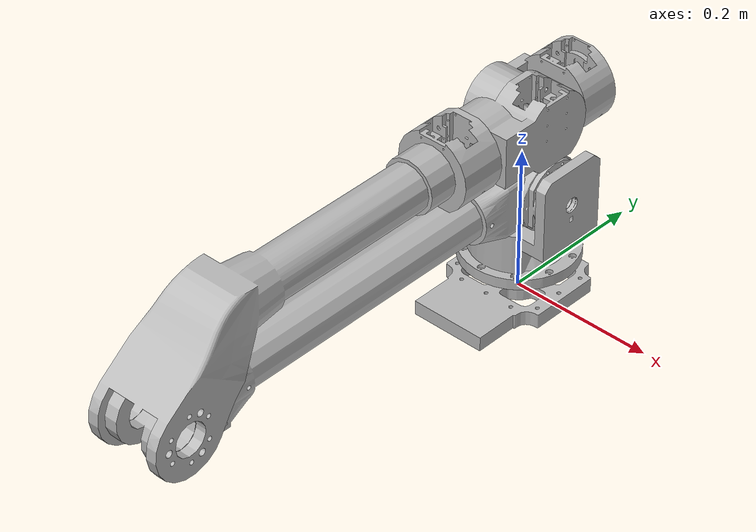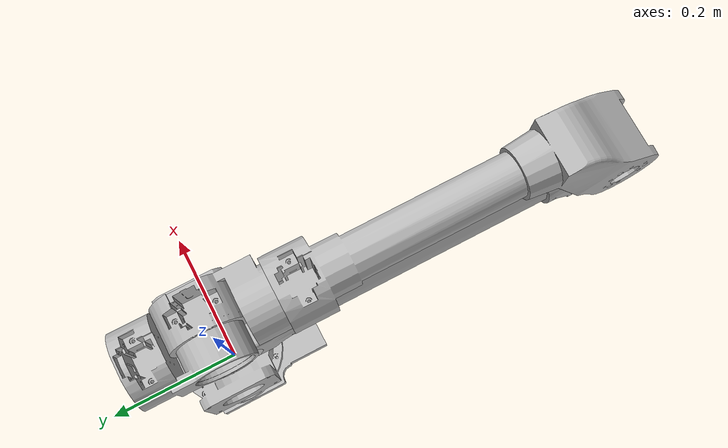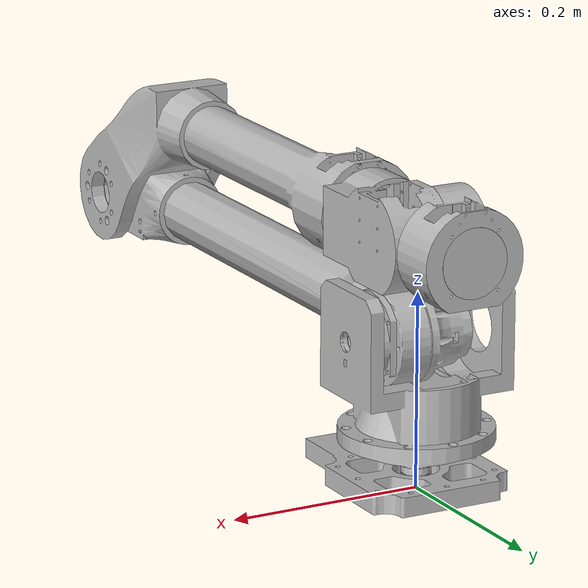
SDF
<sdf version='1.6'>
  <model name='solid_arm_3'>
    <link name='base_link'>
      <pose frame=''>0 0 0 0 -0 0</pose>
      <inertial>
        <pose frame=''>0 -0.034736 0.009937 0 -0 0</pose>
        <mass>300</mass>
        <inertia>
          <ixx>0.00130137</ixx>
          <ixy>-3.2503e-14</ixy>
          <ixz>-1.25315e-16</ixz>
          <iyy>0.000611256</iyy>
          <iyz>7.97483e-07</iyz>
          <izz>0.00188833</izz>
        </inertia>
      </inertial>
      <collision name='base_link_collision'>
        <pose frame=''>0 0 0 0 -0 0</pose>
        <geometry>
          <mesh>
            <scale>1 1 1</scale>
            <uri>model://solid_arm_3/meshes/base_link.STL</uri>
          </mesh>
        </geometry>
      </collision>
      <visual name='base_link_visual'>
        <pose frame=''>0 0 0 0 -0 0</pose>
        <geometry>
          <mesh>
            <scale>1 1 1</scale>
            <uri>model://solid_arm_3/meshes/base_link.STL</uri>
          </mesh>
        </geometry>
      </visual>
    </link>
    <link name='link_1'>
      <pose frame=''>0 0 -0.000272 1.5708 -0 1.5708</pose>
      <inertial>
        <pose frame=''>-0 0.093575 0.003489 0 -0 0</pose>
        <mass>0.8</mass>
        <inertia>
          <ixx>0.00445492</ixx>
          <ixy>5.79947e-09</ixy>
          <ixz>1.56221e-09</ixz>
          <iyy>0.00348291</iyy>
          <iyz>-0.000197414</iyz>
          <izz>0.00329382</izz>
        </inertia>
      </inertial>
      <collision name='link_1_collision'>
        <pose frame=''>0 0 0 0 -0 0</pose>
        <geometry>
          <mesh>
            <scale>1 1 1</scale>
            <uri>model://solid_arm_3/meshes/link_1.STL</uri>
          </mesh>
        </geometry>
      </collision>
      <visual name='link_1_visual'>
        <pose frame=''>0 0 0 0 -0 0</pose>
        <geometry>
          <mesh>
            <scale>1 1 1</scale>
            <uri>model://solid_arm_3/meshes/link_1.STL</uri>
          </mesh>
        </geometry>
      </visual>
    </link>
    <joint name='joint_1' type='revolute'>
      <child>link_1</child>
      <parent>base_link</parent>
      <axis>
        <xyz>-0 0 -1</xyz>
        <limit>
          <lower>0</lower>
          <upper>0</upper>
          <effort>0</effort>
          <velocity>0</velocity>
        </limit>
        <dynamics>
          <spring_reference>0</spring_reference>
          <spring_stiffness>0</spring_stiffness>
        </dynamics>
        <use_parent_model_frame>1</use_parent_model_frame>
      </axis>
    </joint>
    <link name='link_2'>
      <pose frame=''>0 0 0.160693 3.14159 -0 -1.5708</pose>
      <inertial>
        <pose frame=''>0.215408 -0.005552 -0.000358 0 -0 0</pose>
        <mass>1.2</mass>
        <inertia>
          <ixx>0.00164764</ixx>
          <ixy>-0.00156682</ixy>
          <ixz>-1.59251e-05</ixz>
          <iyy>0.0812874</iyy>
          <iyz>-1.52329e-05</iyz>
          <izz>0.0814959</izz>
        </inertia>
      </inertial>
      <collision name='link_2_collision'>
        <pose frame=''>0 0 0 0 -0 0</pose>
        <geometry>
          <mesh>
            <scale>1 1 1</scale>
            <uri>model://solid_arm_3/meshes/link_2.STL</uri>
          </mesh>
        </geometry>
      </collision>
      <visual name='link_2_visual'>
        <pose frame=''>0 0 0 0 -0 0</pose>
        <geometry>
          <mesh>
            <scale>1 1 1</scale>
            <uri>model://solid_arm_3/meshes/link_2.STL</uri>
          </mesh>
        </geometry>
      </visual>
    </link>
    <joint name='joint_2' type='revolute'>
      <child>link_2</child>
      <parent>link_1</parent>
      <axis>
        <xyz>1 0 -0</xyz>
        <limit>
          <lower>0</lower>
          <upper>0</upper>
          <effort>0</effort>
          <velocity>0</velocity>
        </limit>
        <dynamics>
          <spring_reference>0</spring_reference>
          <spring_stiffness>0</spring_stiffness>
        </dynamics>
        <use_parent_model_frame>1</use_parent_model_frame>
      </axis>
    </joint>
    <link name='link_3'>
      <pose frame=''>0 -0.604997 0.162742 -0 0 1.5708</pose>
      <inertial>
        <pose frame=''>0.19005 0.000208 0.073463 0 -0 0</pose>
        <mass>0.7</mass>
        <inertia>
          <ixx>0.00415627</ixx>
          <ixy>2.31977e-06</ixy>
          <ixz>-0.00498939</ixz>
          <iyy>0.0637242</iyy>
          <iyz>-1.4468e-07</iyz>
          <izz>0.0628452</izz>
        </inertia>
      </inertial>
      <collision name='link_3_collision'>
        <pose frame=''>0 0 0 0 -0 0</pose>
        <geometry>
          <mesh>
            <scale>1 1 1</scale>
            <uri>model://solid_arm_3/meshes/link_3.STL</uri>
          </mesh>
        </geometry>
      </collision>
      <visual name='link_3_visual'>
        <pose frame=''>0 0 0 0 -0 0</pose>
        <geometry>
          <mesh>
            <scale>1 1 1</scale>
            <uri>model://solid_arm_3/meshes/link_3.STL</uri>
          </mesh>
        </geometry>
      </visual>
    </link>
    <joint name='joint_3' type='revolute'>
      <child>link_3</child>
      <parent>link_2</parent>
      <axis>
        <xyz>-1 -0 -0</xyz>
        <limit>
          <lower>0</lower>
          <upper>0</upper>
          <effort>0</effort>
          <velocity>0</velocity>
        </limit>
        <dynamics>
          <spring_reference>0</spring_reference>
          <spring_stiffness>0</spring_stiffness>
        </dynamics>
        <use_parent_model_frame>1</use_parent_model_frame>
      </axis>
    </joint>
    <link name='link_4'>
      <pose frame=''>0 -0.098 0.257742 -0 -0 0</pose>
      <inertial>
        <pose frame=''>0.019507 0.079919 -0.005563 0 -0 0</pose>
        <mass>0.4</mass>
        <inertia>
          <ixx>0.00115088</ixx>
          <ixy>-3.72011e-05</ixy>
          <ixz>1.33604e-05</ixz>
          <iyy>0.000610658</iyy>
          <iyz>3.16981e-05</iyz>
          <izz>0.00112721</izz>
        </inertia>
      </inertial>
      <collision name='link_4_collision'>
        <pose frame=''>0 0 0 0 -0 0</pose>
        <geometry>
          <mesh>
            <scale>1 1 1</scale>
            <uri>model://solid_arm_3/meshes/link_4.STL</uri>
          </mesh>
        </geometry>
      </collision>
      <visual name='link_4_visual'>
        <pose frame=''>0 0 0 0 -0 0</pose>
        <geometry>
          <mesh>
            <scale>1 1 1</scale>
            <uri>model://solid_arm_3/meshes/link_4.STL</uri>
          </mesh>
        </geometry>
      </visual>
    </link>
    <joint name='joint_4' type='revolute'>
      <child>link_4</child>
      <parent>link_3</parent>
      <axis>
        <xyz>-0 1 -0</xyz>
        <limit>
          <lower>0</lower>
          <upper>0</upper>
          <effort>0</effort>
          <velocity>0</velocity>
        </limit>
        <dynamics>
          <spring_reference>0</spring_reference>
          <spring_stiffness>0</spring_stiffness>
        </dynamics>
        <use_parent_model_frame>1</use_parent_model_frame>
      </axis>
    </joint>
    <link name='link_5'>
      <pose frame=''>0 -0.002093 0.257742 -0 0 1.5708</pose>
      <inertial>
        <pose frame=''>0.064868 0.007142 -0.006547 0 -0 0</pose>
        <mass>0.3</mass>
        <inertia>
          <ixx>0.00066232</ixx>
          <ixy>0.000164061</ixy>
          <ixz>3.4013e-05</ixz>
          <iyy>0.000828482</iyy>
          <iyz>-1.47763e-05</iyz>
          <izz>0.000974256</izz>
        </inertia>
      </inertial>
      <collision name='link_5_collision'>
        <pose frame=''>0 0 0 0 -0 0</pose>
        <geometry>
          <mesh>
            <scale>1 1 1</scale>
            <uri>model://solid_arm_3/meshes/link_5.STL</uri>
          </mesh>
        </geometry>
      </collision>
      <visual name='link_5_visual'>
        <pose frame=''>0 0 0 0 -0 0</pose>
        <geometry>
          <mesh>
            <scale>1 1 1</scale>
            <uri>model://solid_arm_3/meshes/link_5.STL</uri>
          </mesh>
        </geometry>
      </visual>
    </link>
    <joint name='joint_5' type='revolute'>
      <child>link_5</child>
      <parent>link_4</parent>
      <axis>
        <xyz>1 0 0</xyz>
        <limit>
          <lower>0</lower>
          <upper>0</upper>
          <effort>0</effort>
          <velocity>0</velocity>
        </limit>
        <dynamics>
          <spring_reference>0</spring_reference>
          <spring_stiffness>0</spring_stiffness>
        </dynamics>
        <use_parent_model_frame>1</use_parent_model_frame>
      </axis>
    </joint>
    <link name='link_6'>
      <pose frame=''>0 0.106717 0.255728 -1.57079 -1.57079 -1.5708</pose>
      <inertial>
        <pose frame=''>-0.000217 0.004931 -7e-06 0 -0 0</pose>
        <mass>0.2</mass>
        <inertia>
          <ixx>1.20905e-05</ixx>
          <ixy>3.34247e-08</ixy>
          <ixz>-9.39864e-21</ixz>
          <iyy>2.34023e-05</iyy>
          <iyz>-5.34321e-22</iyz>
          <izz>1.19313e-05</izz>
        </inertia>
      </inertial>
      <collision name='link_6_collision'>
        <pose frame=''>0 0 0 0 -0 0</pose>
        <geometry>
          <mesh>
            <scale>1 1 1</scale>
            <uri>model://solid_arm_3/meshes/link_6.STL</uri>
          </mesh>
        </geometry>
      </collision>
      <visual name='link_6_visual'>
        <pose frame=''>0 0 0 0 -0 0</pose>
        <geometry>
          <mesh>
            <scale>1 1 1</scale>
            <uri>model://solid_arm_3/meshes/link_6.STL</uri>
          </mesh>
        </geometry>
      </visual>
    </link>
    <joint name='joint_6' type='revolute'>
      <child>link_6</child>
      <parent>link_5</parent>
      <axis>
        <xyz>-4e-06 1 4e-06</xyz>
        <limit>
          <lower>0</lower>
          <upper>0</upper>
          <effort>0</effort>
          <velocity>0</velocity>
        </limit>
        <dynamics>
          <spring_reference>0</spring_reference>
          <spring_stiffness>0</spring_stiffness>
        </dynamics>
        <use_parent_model_frame>1</use_parent_model_frame>
      </axis>
    </joint>
  </model>
</sdf>
